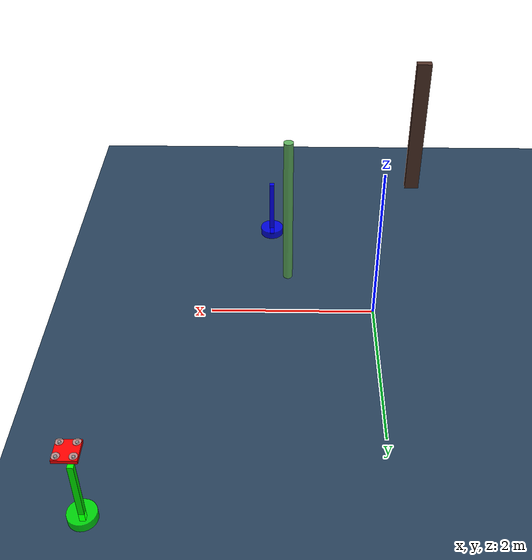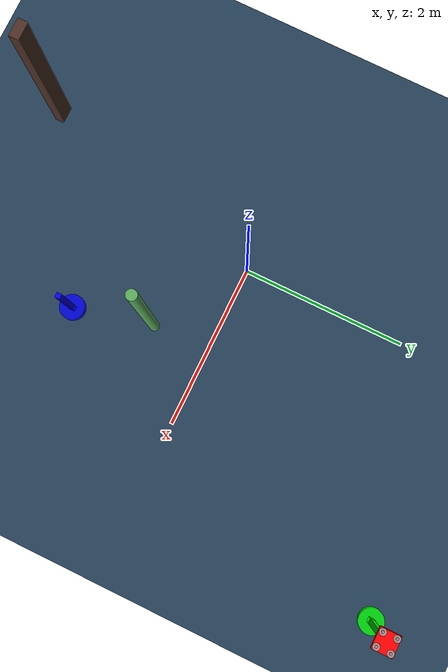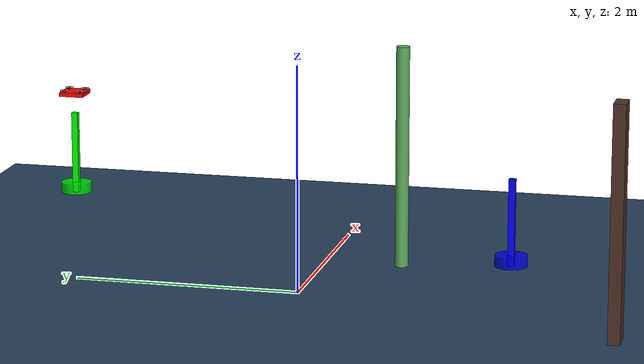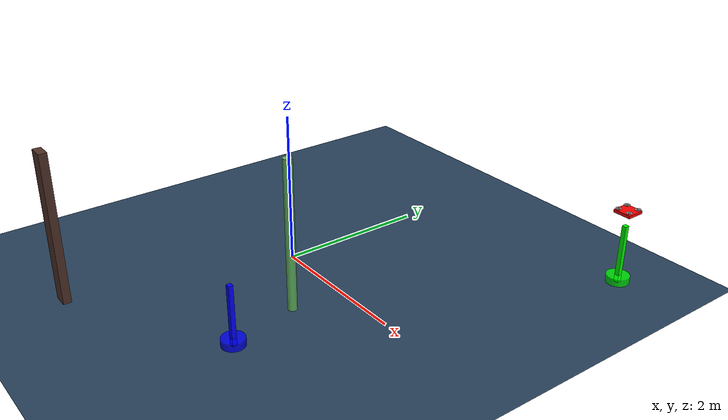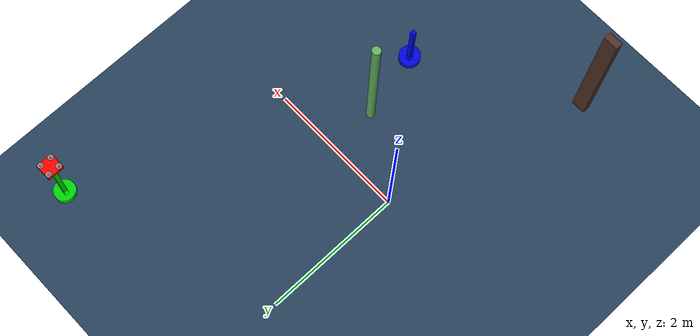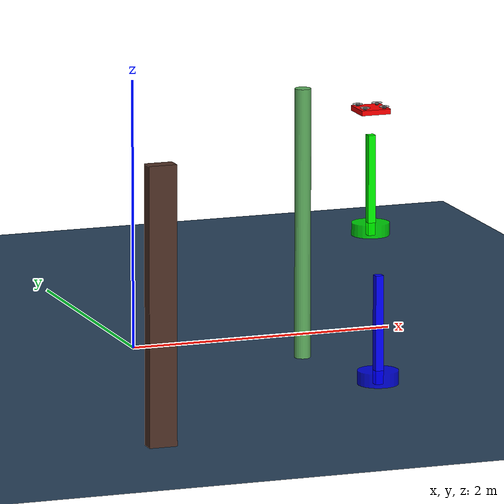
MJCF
<mujoco model="complex_uav_env">
  <compiler angle="degree" coordinate="local" inertiafromgeom="true"/>
  <option integrator="RK4" timestep="0.01"/>

  <visual>
    <headlight diffuse="0.6 0.6 0.6" ambient="0.3 0.3 0.3"/>
    <rgba haze="0.15 0.25 0.35 1"/>
    <global offwidth="2560" offheight="1440"/>
  </visual>

  <asset>
    <texture type="skybox" builtin="gradient" rgb1="0.3 0.5 0.7" rgb2="0 0 0" width="512" height="3072"/>
    <texture name="grid" type="2d" builtin="checker" rgb1="0.1 0.2 0.3" rgb2="0.2 0.3 0.4" width="512" height="512"/>
    <material name="grid" texture="grid" texrepeat="1 1" reflectance="0.2"/>
  </asset>

  <worldbody>
    <!-- Ground plane -->
    <geom name="ground" type="plane" size="4.0 4.0 0.1" material="grid"/>
    <light name="light1" pos="0 0 4" dir="0 0 -1" diffuse="1 1 1"/>

    <!-- Start position marker (green) -->
    <geom name="start_marker" type="cylinder" size="0.15 0.05" pos="3.0 3.0 0.05" rgba="0 1 0 0.8"/>
    <geom name="start_pole" type="box" size="0.03 0.03 0.4" pos="3.0 3.0 0.4" rgba="0 1 0 1"/>

    <!-- Goal position marker (blue) -->
    <geom name="goal_marker" type="cylinder" size="0.15 0.05" pos="1.2923827196188906 -1.6482278667677823 0.05" rgba="0 0 1 0.8"/>
    <geom name="goal_pole" type="box" size="0.03 0.03 0.4" pos="1.2923827196188906 -1.6482278667677823 0.4" rgba="0 0 1 1"/>

    <!-- UAV starting position -->
    <body name="chassis" pos="3.0 3.0 1.0">
      <joint type="free" name="root"/>
      <geom type="box" size="0.12 0.12 0.02" rgba="1.0 0.0 0.0 1.0" mass="0.8"/>

      <!-- Propeller arms and motors -->
      <geom type="box" size="0.08 0.01 0.005" pos="0 0 0.01" rgba="0.3 0.3 0.3 1"/>
      <geom type="box" size="0.01 0.08 0.005" pos="0 0 0.01" rgba="0.3 0.3 0.3 1"/>

      <!-- Motor visual geometry -->
      <geom type="cylinder" size="0.015 0.02" pos="0.08 0.08 0.015" rgba="0.2 0.2 0.2 1"/>
      <geom type="cylinder" size="0.015 0.02" pos="-0.08 0.08 0.015" rgba="0.2 0.2 0.2 1"/>
      <geom type="cylinder" size="0.015 0.02" pos="0.08 -0.08 0.015" rgba="0.2 0.2 0.2 1"/>
      <geom type="cylinder" size="0.015 0.02" pos="-0.08 -0.08 0.015" rgba="0.2 0.2 0.2 1"/>

      <!-- Propellers -->
      <geom type="cylinder" size="0.04 0.002" pos="0.08 0.08 0.035" rgba="0.7 0.7 0.7 0.8"/>
      <geom type="cylinder" size="0.04 0.002" pos="-0.08 0.08 0.035" rgba="0.7 0.7 0.7 0.8"/>
      <geom type="cylinder" size="0.04 0.002" pos="0.08 -0.08 0.035" rgba="0.7 0.7 0.7 0.8"/>
      <geom type="cylinder" size="0.04 0.002" pos="-0.08 -0.08 0.035" rgba="0.7 0.7 0.7 0.8"/>

      <!-- Sites for motor force application -->
      <site name="motor1" pos="0.08 0.08 0" size="0.01"/>
      <site name="motor2" pos="-0.08 0.08 0" size="0.01"/>
      <site name="motor3" pos="0.08 -0.08 0" size="0.01"/>
      <site name="motor4" pos="-0.08 -0.08 0" size="0.01"/>
    </body>
    <geom name="test_obs_0" type="box" size="0.10172713734515734 0.0527049445426618 1.0" pos="-0.7778597022205403 -2.850084080001282 1.0" rgba="0.31059592307135 0.1918111588899067 0.15039702363973123 1.0"/>
    <geom name="test_obs_1" type="cylinder" size="0.059643267401958994 1.0" pos="1.065642082798992 -0.6938545115693153 1.0" rgba="0.3660246798470803 0.681042087111126 0.36795983714364144 1.0"/>
  </worldbody>

  <actuator>
    <motor name="m1" gear="0 0 1 0 0 0" site="motor1"/>
    <motor name="m2" gear="0 0 1 0 0 0" site="motor2"/>
    <motor name="m3" gear="0 0 1 0 0 0" site="motor3"/>
    <motor name="m4" gear="0 0 1 0 0 0" site="motor4"/>
  </actuator>
</mujoco>
